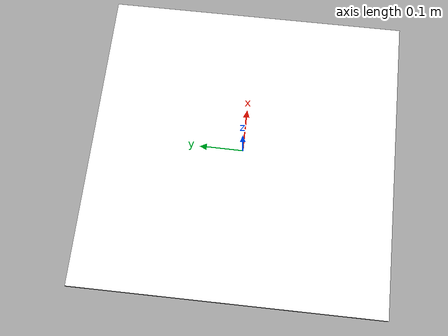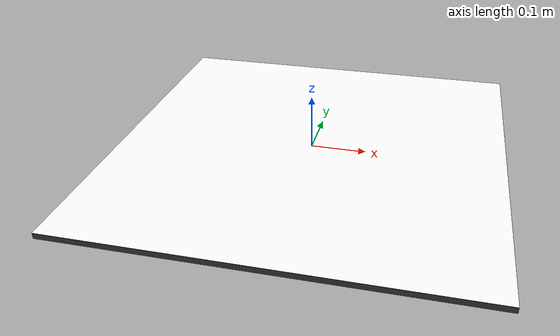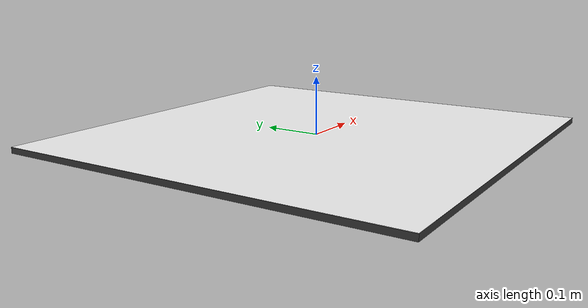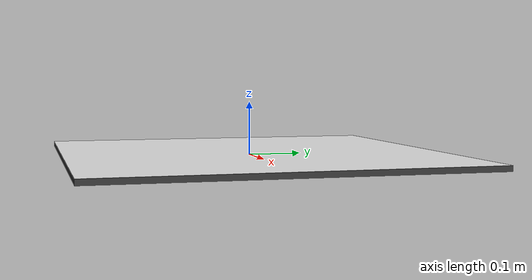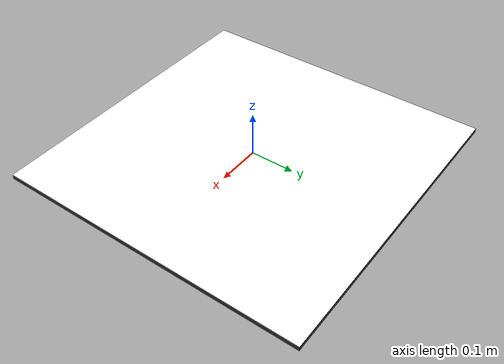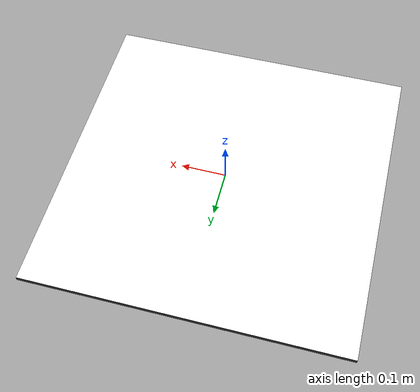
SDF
<?xml version="1.0"?>
<sdf version="1.9">
  <model name="chessboard">
    <static>true</static>
    <link name="board_link">
      <inertial>
        <mass>0.05</mass>
        <inertia>
          <ixx>0.000015</ixx>
          <ixy>0.0</ixy>
          <ixz>0.0</ixz>
          <iyy>0.000015</iyy>
          <iyz>0.0</iyz>
          <izz>0.0000108</izz>
        </inertia>
      </inertial>

      <collision name="collision">
        <geometry>
          <box>
            <size>0.70 0.70 0.01</size>
          </box>
        </geometry>
        <surface>
          <friction>
            <ode>
              <mu>0.6</mu>
              <mu2>0.6</mu2>
            </ode>
          </friction>
        </surface>
      </collision>

      <!-- Base board body -->
      <visual name="board_base_visual">
        <geometry>
          <box>
            <size>0.70 0.70 0.01</size>
          </box>
        </geometry>
        <material>
          <ambient>0.18 0.18 0.18 1</ambient>
          <diffuse>0.20 0.20 0.20 1</diffuse>
          <specular>0.05 0.05 0.05 1</specular>
        </material>
      </visual>

      <!-- Textured top surface -->
      <visual name="board_texture_visual">
        <pose>0 0 0.0051 0 0 0</pose>
        <geometry>
          <plane>
            <normal>0 0 1</normal>
            <size>0.70 0.70</size>
          </plane>
        </geometry>
        <material>
          <ambient>1 1 1 1</ambient>
          <diffuse>1 1 1 1</diffuse>
          <specular>0.1 0.1 0.1 1</specular>
          <pbr>
            <metal>
              <albedo_map>model://chessboard/meshes/chessboard.png</albedo_map>
              <roughness>0.9</roughness>
              <metalness>0.0</metalness>
            </metal>
          </pbr>
        </material>
      </visual>
    </link>
  </model>
</sdf>
